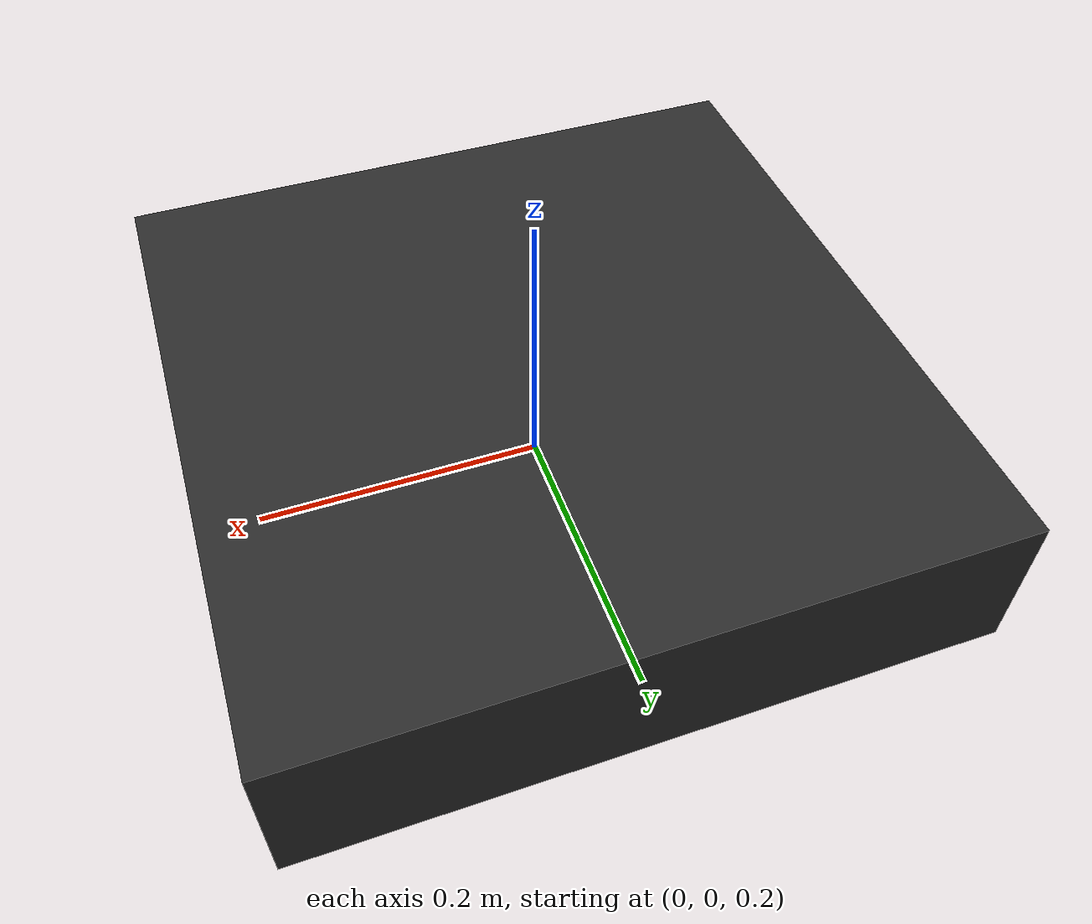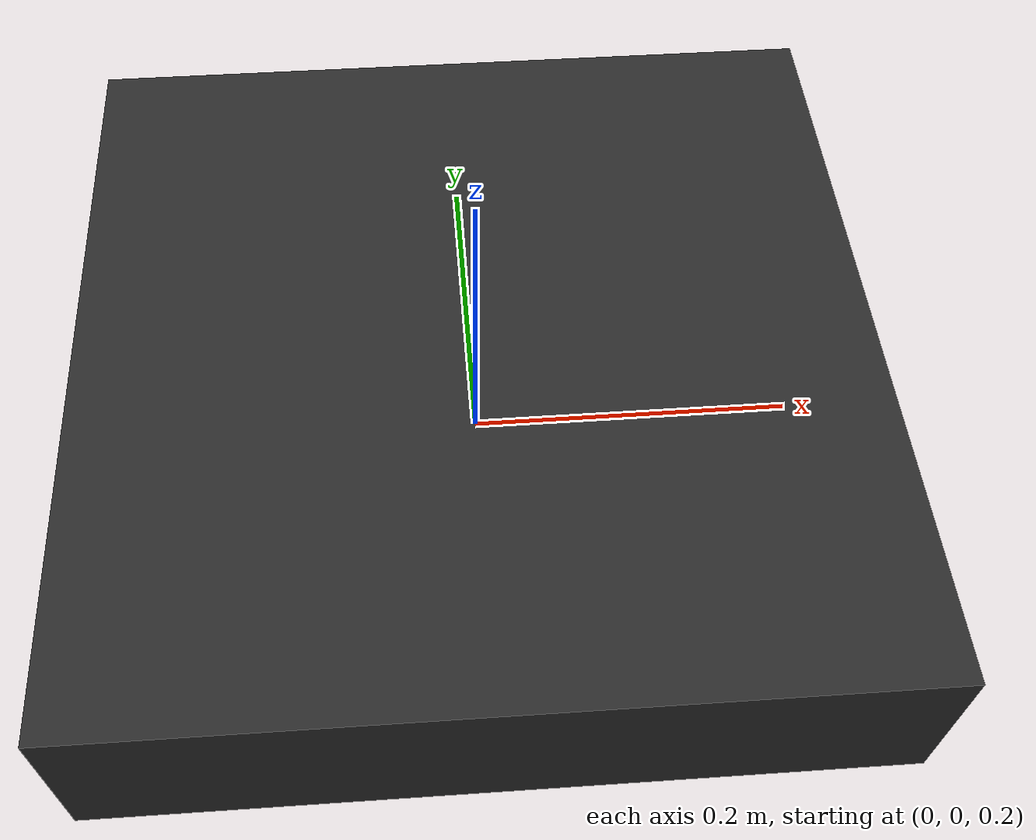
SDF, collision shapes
<?xml version="1.0" encoding="UTF-8"?>
<sdf version='1.9'>
  <model name='px4vision'>
    <gz:partition>px4</gz:partition>
    <pose>0 0 .24 0 0 0</pose>
    <self_collide>false</self_collide>
    <static>false</static>
    <link name='base_link'>
      <pose>0 0 0 0 0 0</pose>
      <inertial>
        <pose>0 0 0 0 0 0</pose>
        <mass>1.5</mass>
        <inertia>
          <ixx>0.029125</ixx>
          <ixy>0</ixy>
          <ixz>0</ixz>
          <iyy>0.029125</iyy>
          <iyz>0</iyz>
          <izz>0.055225</izz>
        </inertia>
      </inertial>
      <gravity>1</gravity>
      <velocity_decay />
      <collision name='base_link_inertia_collision'>
        <pose>0 0 0 0 0 0</pose>
        <geometry>
          <box>
            <size>0.47 0.47 0.11</size>
          </box>
        </geometry>
        <surface>
          <contact>
            <ode>
              <min_depth>0.001</min_depth>
              <max_vel>0</max_vel>
            </ode>
          </contact>
          <friction>
            <ode/>
          </friction>
        </surface>
      </collision>
      <visual name='base_link_inertia_visual'>
        <pose>0 0 0 1.5707 0 0.01</pose>
        <geometry>
          <mesh>
            <scale>0.001 0.001 0.001</scale>
            <uri>model://px4vision/meshes/body.dae</uri>
          </mesh>
        </geometry>
        <material> <!-- DarkGrey-->
          <ambient>0.175 0.175 0.175 1.0</ambient>
          <diffuse>0.175 0.175 0.175 1.0</diffuse>
          <specular>0.175 0.175 0.175 1.0</specular>
        </material>
      </visual>
      <sensor name="air_pressure_sensor" type="air_pressure">
        <frame_id>base_link</frame_id>
        <always_on>1</always_on>
        <update_rate>30</update_rate>
        <plugin filename="gz-sim-air-pressure-system" name="gz::sim::systems::AirPressure" />
        <air_pressure>
          <topic>baro</topic>
          <pressure>
            <noise type="gaussian">
              <mean>0</mean>
              <stddev>0.01</stddev>
            </noise>
          </pressure>
        </air_pressure>
      </sensor>
      <sensor name="magnetometer_sensor" type="magnetometer">
        <frame_id>base_link</frame_id>
        <always_on>1</always_on>
        <update_rate>100</update_rate>
        <plugin filename="gz-sim-magnetometer-system" name="gz::sim::systems::Magnetometer" />
        <magnetometer>
          <!-- TODO: update to fix units and coordinate system when we move past Harmonic -->
          <!-- See https://github.com/gazebosim/gz-sim/pull/2460 -->
          <!-- 3mgauss RMS: NOTE: noise is in tesla but sensor reports data in gauss -->
          <!-- Noise modeled after IIS2MDC -->
          <topic>mag</topic>
          <x>
            <noise type="gaussian">
              <stddev>0.0001</stddev>
            </noise>
          </x>
          <y>
            <noise type="gaussian">
              <stddev>0.0001</stddev>
            </noise>
          </y>
          <z>
            <noise type="gaussian">
              <stddev>0.0001</stddev>
            </noise>
          </z>
        </magnetometer>
      </sensor>
      <sensor name="navsat_sensor" type="navsat">
         <frame_id>base_link</frame_id>
        <always_on>1</always_on>
        <update_rate>10</update_rate>
        <plugin filename="gz-sim-navsat-system" name="gz::sim::systems::NavSat"/>  <!-- different versions for gz and ign -->
      </sensor>
      <sensor name="imu_sensor" type="imu">
        <frame_id>base_link</frame_id>
        <always_on>1</always_on>
        <update_rate>250</update_rate>
        <plugin filename="gz-sim-imu-system" name="gz::sim::systems::Imu"/>
        <imu>
          <topic>imu</topic>
          <angular_velocity>
            <x>
              <noise type="gaussian">
                <mean>0</mean>
                <stddev>0.00018665</stddev>
                <dynamic_bias_stddev>0.000038785</dynamic_bias_stddev>
                <dynamic_bias_correlation_time>1000</dynamic_bias_correlation_time>
              </noise>
            </x>
            <y>
              <noise type="gaussian">
                <mean>0</mean>
                <stddev>0.00018665</stddev>
                <dynamic_bias_stddev>0.000038785</dynamic_bias_stddev>
                <dynamic_bias_correlation_time>1000</dynamic_bias_correlation_time>
              </noise>
            </y>
            <z>
              <noise type="gaussian">
                <mean>0</mean>
                <stddev>0.00018665</stddev>
                <dynamic_bias_stddev>0.000038785</dynamic_bias_stddev>
                <dynamic_bias_correlation_time>1000</dynamic_bias_correlation_time>
              </noise>
            </z>
          </angular_velocity>
          <linear_acceleration>
            <x>
              <noise type="gaussian">
                <mean>0</mean>
                <stddev>0.00186</stddev>
                <dynamic_bias_stddev>0.006</dynamic_bias_stddev>
                <dynamic_bias_correlation_time>300</dynamic_bias_correlation_time>
              </noise>
            </x>
            <y>
              <noise type="gaussian">
                <mean>0</mean>
                <stddev>0.00186</stddev>
                <dynamic_bias_stddev>0.006</dynamic_bias_stddev>
                <dynamic_bias_correlation_time>300</dynamic_bias_correlation_time>
              </noise>
            </y>
            <z>
              <noise type="gaussian">
                <mean>0</mean>
                <stddev>0.00186</stddev>
                <dynamic_bias_stddev>0.006</dynamic_bias_stddev>
                <dynamic_bias_correlation_time>300</dynamic_bias_correlation_time>
              </noise>
            </z>
          </linear_acceleration>
        </imu>
      </sensor>
      <sensor name="gpu_lidar" type="gpu_lidar">
        <frame_id>base_link</frame_id>
        <pose> 0.07 0.032 -0.012 0 -0.4 0</pose>
        <always_on>1</always_on>
        <update_rate>30</update_rate>
        <ray>
          <topic>lidar</topic>
          <scan>
            <horizontal>
              <samples>640</samples>
              <resolution>1</resolution>
              <min_angle>-1.396263</min_angle>
              <max_angle>1.396263</max_angle>
            </horizontal>
            <vertical>
              <samples>640</samples>
              <resolution>1</resolution>
              <min_angle>-0.52</min_angle>
              <max_angle>0.26</max_angle>
            </vertical>
          </scan>
          <range>
            <min>0.08</min>
            <max>40.0</max>
            <resolution>0.01</resolution>
          </range>
        </ray>
        <!-- Optional visualization -->
        <visualize>true</visualize>
        <!-- Topic name -->
      </sensor>
      <sensor name="optical_flow" type="camera">
        <pose> 0.7 0.32 -4.0 0 1.5708 0 </pose>
        <always_on>1</always_on>
        <update_rate>30</update_rate>
        <camera>
          <horizontal_fov>1.3962634</horizontal_fov>
          <topic>flow</topic>
          <image>
            <width>64</width>
            <height>64</height>
            <format>L8</format>
          </image>
          <clip>
            <near>0.08</near>
            <far>50.0</far>
          </clip>
        </camera>
      </sensor>
    </link>
    <!-- Ground-truth pose publisher -->

    <plugin filename="gz-sim-pose-publisher-system" name="gz::sim::systems::PosePublisher">
      <publish_link_pose>false</publish_link_pose>
      <publish_model_pose>true</publish_model_pose>
      <update_rate>30</update_rate>
    </plugin>

    <!-- RGB Camera Link -->
    <link name="left_camera_link">
      <pose> 0.19 0.05 -0.012 0 0 0 </pose>  <!-- adjust as needed 0.09 -0.032 -0.012 0 0 0 -->
      <!-- Minimal inertial block -->
      <inertial>
        <mass>0.01</mass>
        <inertia>
          <ixx>1e-6</ixx>
          <iyy>1e-6</iyy>
          <izz>1e-6</izz>
        </inertia>
      </inertial>

      <!-- Simple collision so physics doesn't explode -->
      <collision name="left_camera_collision">
        <geometry>
          <box><size>0.05 0.05 0.05</size></box>
        </geometry>
      </collision>

      <sensor name="left_camera" type="camera">
        <frame_id>left_camera_optical</frame_id>
        <always_on>1</always_on>
        <update_rate>30</update_rate>
        <plugin filename="libgz-sim-camera-system.so" name="gz::sim::systems::Camera"/>

        <!-- left -->
        <camera name="left">
          <topic>left/image</topic>
          <horizontal_fov>1.5708</horizontal_fov>
          <image>
            <width>640</width>
            <height>480</height>
            <format>R8G8B8</format>
          </image>
          <lens>
            <intrinsics>
              <fx>320</fx>
              <fy>320</fy>
              <cx>320</cx>
              <cy>240</cy>
            </intrinsics>
          </lens>
          <clip>
            <near>0.02</near>
            <far>100.0</far>
          </clip>
        </camera>
      </sensor>

    </link>

    <joint name="left_camera_joint" type="fixed">
      <parent>base_link</parent>
      <child>left_camera_link</child>
    </joint>

    <link name="right_camera_link">
      <pose> 0.19 -0.05 -0.012 0 0 0 </pose>
      <inertial>
        <mass>0.01</mass>
        <inertia>
          <ixx>1e-6</ixx>
          <iyy>1e-6</iyy>
          <izz>1e-6</izz>
        </inertia>
      </inertial>

      <collision name="right_camera_collision">
        <geometry>
          <box><size>0.05 0.05 0.05</size></box>
        </geometry>
      </collision>

      <sensor name="right_camera" type="camera">
        <frame_id>right_camera_optical</frame_id>
        <always_on>1</always_on>
        <update_rate>30</update_rate>
        <plugin filename="libgz-sim-camera-system.so" name="gz::sim::systems::Camera"/>
        <camera>
          <topic>right/image</topic>
          <horizontal_fov>1.5708</horizontal_fov>
          <image>
            <width>640</width>
            <height>480</height>
            <format>R8G8B8</format>
          </image>
          <lens>
            <intrinsics>
              <fx>320</fx>
              <fy>320</fy>
              <cx>320</cx>
              <cy>240</cy>
            </intrinsics>
          </lens>
          <clip>
            <near>0.02</near>
            <far>100.0</far>
          </clip>
        </camera>
      </sensor>
    </link>

    <joint name="right_camera_joint" type="fixed">
      <parent>base_link</parent>
      <child>right_camera_link</child>
    </joint>

    <!-- Depth Camera Link -->
    <link name="depth_camera_link">
      <pose> 0.09 -0.032 -0.012 0 0 0 </pose>

      <!-- Minimal inertial block -->
      <inertial>
        <mass>0.01</mass>
        <inertia>
          <ixx>1e-6</ixx>
          <iyy>1e-6</iyy>
          <izz>1e-6</izz>
        </inertia>
      </inertial>

      <!-- Simple collision -->
      <collision name="depth_camera_collision">
        <geometry>
          <box><size>0.05 0.05 0.05</size></box>
        </geometry>
      </collision>

      <!-- Visual -->
      <visual name="depth_camera_visual">
        <geometry>
          <box><size>0.01 0.01 0.01</size></box>
        </geometry>
        <material>
          <ambient>0 1 0 1</ambient>
          <diffuse>0 1 0 1</diffuse>
        </material>
      </visual>

      <sensor name="depth_camera" type="depth_camera">
        <frame_id>depth_camera_optical</frame_id>
        <always_on>1</always_on>
        <update_rate>30</update_rate>

        <topic>depth</topic>

        <camera>
          <horizontal_fov>1.5708</horizontal_fov>

          <image>
            <width>640</width>
            <height>480</height>
            <format>R_FLOAT32</format>
          </image>

          <clip>
            <near>0.02</near>
            <far>100.0</far>
          </clip>

          <lens>
            <intrinsics>
              <fx>320</fx>
              <fy>320</fy>
              <cx>320</cx>
              <cy>240</cy>
            </intrinsics>
          </lens>
        </camera>

        <depth_camera>
          <output>depths</output>
        </depth_camera>

        <plugin filename="gz-sim-depth-camera-system" name="gz::sim::systems::DepthCamera"/>
      </sensor>
    </link>

    <!-- Joint connecting depth camera to base_link -->
    <joint name="depth_camera_joint" type="fixed">
      <parent>base_link</parent>
      <child>depth_camera_link</child>
    </joint>

    <link name='rotor_0'>
      <pose>0.0935 -0.107 0.03 0 0 0</pose>
      <inertial>
        <pose>0 0 0 0 0 0</pose>
        <mass>0.005</mass>
        <inertia>
          <ixx>9.75e-07</ixx>
          <iyy>0.000273104</iyy>
          <izz>0.000274004</izz>
        </inertia>
      </inertial>
      <collision name='rotor_0_collision'>
        <pose>0 0 0 0 0 0</pose>
        <geometry>
          <cylinder>
            <length>0.005</length>
            <radius>0.128</radius>
          </cylinder>
        </geometry>
        <surface>
          <contact>
            <ode>
              <min_depth>0.001</min_depth>
              <max_vel>0</max_vel>
            </ode>
          </contact>
          <friction>
            <ode />
          </friction>
        </surface>
      </collision>
      <visual name='rotor_0_visual'>
        <pose>0 0 0 0 0 0</pose>
        <geometry>
          <mesh>
            <scale>0.6 0.6 0.6</scale>
            <uri>model://px4vision/meshes/iris_prop_ccw.dae</uri>
          </mesh>
        </geometry>
        <material> <!-- Blue -->
          <ambient>0 0 1</ambient>
          <diffuse>0 0 1</diffuse>
          <specular>0.1 0.1 0.1 1</specular>
        </material>
      </visual>
      <gravity>1</gravity>
      <velocity_decay />
    </link>
    <joint name='rotor_0_joint' type='revolute'>
      <child>rotor_0</child>
      <parent>base_link</parent>
      <axis>
        <xyz>0 0 1</xyz>
        <limit>
          <lower>-1e+16</lower>
          <upper>1e+16</upper>
        </limit>
        <dynamics>
          <spring_reference>0</spring_reference>
          <spring_stiffness>0</spring_stiffness>
        </dynamics>
      </axis>
    </joint>
    <link name='rotor_1'>
      <pose>-0.0935 0.107 0.03 0 0 0</pose>
      <inertial>
        <pose>0 0 0 0 0 0</pose>
        <mass>0.005</mass>
        <inertia>
          <ixx>9.75e-07</ixx>
          <iyy>0.000273104</iyy>
          <izz>0.000274004</izz>
        </inertia>
      </inertial>
      <collision name='rotor_1_collision'>
        <pose>0 0 0 0 0 0</pose>
        <geometry>
          <cylinder>
            <length>0.005</length>
            <radius>0.128</radius>
          </cylinder>
        </geometry>
        <surface>
          <contact>
            <ode>
              <min_depth>0.001</min_depth>
              <max_vel>0</max_vel>
            </ode>
          </contact>
          <friction>
            <ode />
          </friction>
        </surface>
      </collision>
      <visual name='rotor_1_visual'>
        <pose>0 0 0 0 0 0</pose>
        <geometry>
          <mesh>
            <scale>0.6 0.6 0.6</scale>
            <uri>model://px4vision/meshes/iris_prop_ccw.dae</uri>
          </mesh>
        </geometry>
        <material> <!-- DarkGrey -->
          <ambient>0.175 0.175 0.175 1.0</ambient>
          <diffuse>0.175 0.175 0.175 1.0</diffuse>
          <specular>0.175 0.175 0.175 1.0</specular>
        </material>
      </visual>
      <gravity>1</gravity>
      <velocity_decay />
    </link>
    <joint name='rotor_1_joint' type='revolute'>
      <child>rotor_1</child>
      <parent>base_link</parent>
      <axis>
        <xyz>0 0 1</xyz>
        <limit>
          <lower>-1e+16</lower>
          <upper>1e+16</upper>
        </limit>
        <dynamics>
          <spring_reference>0</spring_reference>
          <spring_stiffness>0</spring_stiffness>
        </dynamics>
      </axis>
    </joint>
    <link name='rotor_2'>
      <pose>0.0935 0.107 0.03 0 0 0</pose>
      <inertial>
        <pose>0 0 0 0 0 0</pose>
        <mass>0.005</mass>
        <inertia>
          <ixx>9.75e-07</ixx>
          <iyy>0.000273104</iyy>
          <izz>0.000274004</izz>
        </inertia>
      </inertial>
      <collision name='rotor_2_collision'>
        <pose>0 0 0 0 0 0</pose>
        <geometry>
          <cylinder>
            <length>0.005</length>
            <radius>0.128</radius>
          </cylinder>
        </geometry>
        <surface>
          <contact>
            <ode>
              <min_depth>0.001</min_depth>
              <max_vel>0</max_vel>
            </ode>
          </contact>
          <friction>
            <ode />
          </friction>
        </surface>
      </collision>
      <visual name='rotor_2_visual'>
        <pose>0 0 0 0 0 0</pose>
        <geometry>
          <mesh>
            <scale>0.6 0.6 0.6</scale>
            <uri>model://px4vision/meshes/iris_prop_cw.dae</uri>
          </mesh>
        </geometry>
        <material> <!-- Blue -->
          <ambient>0 0 1</ambient>
          <diffuse>0 0 1</diffuse>
          <specular>0.1 0.1 0.1 1</specular>
        </material>
      </visual>
      <gravity>1</gravity>
      <velocity_decay />
    </link>
    <joint name='rotor_2_joint' type='revolute'>
      <child>rotor_2</child>
      <parent>base_link</parent>
      <axis>
        <xyz>0 0 1</xyz>
        <limit>
          <lower>-1e+16</lower>
          <upper>1e+16</upper>
        </limit>
        <dynamics>
          <spring_reference>0</spring_reference>
          <spring_stiffness>0</spring_stiffness>
        </dynamics>
      </axis>
    </joint>
    <link name='rotor_3'>
      <pose>-0.0935 -0.107 0.03 0 0 0</pose>
      <inertial>
        <pose>0 0 0 0 0 0</pose>
        <mass>0.005</mass>
        <inertia>
          <ixx>9.75e-07</ixx>
          <iyy>0.000273104</iyy>
          <izz>0.000274004</izz>
        </inertia>
      </inertial>
      <collision name='rotor_3_collision'>
        <pose>0 0 0 0 0 0</pose>
        <geometry>
          <cylinder>
            <length>0.005</length>
            <radius>0.128</radius>
          </cylinder>
        </geometry>
        <surface>
          <contact>
            <ode>
              <min_depth>0.001</min_depth>
              <max_vel>0</max_vel>
            </ode>
          </contact>
          <friction>
            <ode />
          </friction>
        </surface>
      </collision>
      <visual name='rotor_3_visual'>
        <pose>0 0 0 0 0 0</pose>
        <geometry>
          <mesh>
            <scale>0.6 0.6 0.6</scale>
            <uri>model://px4vision/meshes/iris_prop_cw.dae</uri>
          </mesh>
        </geometry>
        <material> <!-- DarkGrey -->
          <ambient>0.175 0.175 0.175 1.0</ambient>
          <diffuse>0.175 0.175 0.175 1.0</diffuse>
          <specular>0.175 0.175 0.175 1.0</specular>
        </material>
      </visual>
      <gravity>1</gravity>
      <velocity_decay />
    </link>
    <joint name='rotor_3_joint' type='revolute'>
      <child>rotor_3</child>
      <parent>base_link</parent>
      <axis>
        <xyz>0 0 1</xyz>
        <limit>
          <lower>-1e+16</lower>
          <upper>1e+16</upper>
        </limit>
        <dynamics>
          <spring_reference>0</spring_reference>
          <spring_stiffness>0</spring_stiffness>
        </dynamics>
      </axis>
    </joint>
    <!-- TODO: add GPS plugin -->
    <plugin filename="gz-sim-multicopter-motor-model-system"
      name="gz::sim::systems::MulticopterMotorModel">
      <robotNamespace>px4vision</robotNamespace>
      <jointName>rotor_0_joint</jointName>
      <linkName>rotor_0</linkName>
      <turningDirection>ccw</turningDirection>
      <timeConstantUp>0.0125</timeConstantUp>
      <timeConstantDown>0.025</timeConstantDown>
      <maxRotVelocity>1000</maxRotVelocity>
      <motorConstant>8.54858e-06</motorConstant>
      <momentConstant>0.06</momentConstant>
      <commandSubTopic>command/motor_speed</commandSubTopic>
      <motorNumber>0</motorNumber>
      <rotorDragCoefficient>0.000806428</rotorDragCoefficient>
      <rollingMomentCoefficient>1e-06</rollingMomentCoefficient>
      <rotorVelocitySlowdownSim>10</rotorVelocitySlowdownSim>
      <motorType>velocity</motorType>
    </plugin>
    <plugin filename="gz-sim-multicopter-motor-model-system"
      name="gz::sim::systems::MulticopterMotorModel">
      <robotNamespace>px4vision</robotNamespace>
      <jointName>rotor_1_joint</jointName>
      <linkName>rotor_1</linkName>
      <turningDirection>ccw</turningDirection>
      <timeConstantUp>0.0125</timeConstantUp>
      <timeConstantDown>0.025</timeConstantDown>
      <maxRotVelocity>1000</maxRotVelocity>
      <motorConstant>8.54858e-06</motorConstant>
      <momentConstant>0.06</momentConstant>
      <commandSubTopic>command/motor_speed</commandSubTopic>
      <motorNumber>1</motorNumber>
      <rotorDragCoefficient>0.000806428</rotorDragCoefficient>
      <rollingMomentCoefficient>1e-06</rollingMomentCoefficient>
      <rotorVelocitySlowdownSim>10</rotorVelocitySlowdownSim>
      <motorType>velocity</motorType>
    </plugin>
    <plugin filename="gz-sim-multicopter-motor-model-system"
      name="gz::sim::systems::MulticopterMotorModel">
      <robotNamespace>px4vision</robotNamespace>
      <jointName>rotor_2_joint</jointName>
      <linkName>rotor_2</linkName>
      <turningDirection>cw</turningDirection>
      <timeConstantUp>0.0125</timeConstantUp>
      <timeConstantDown>0.025</timeConstantDown>
      <maxRotVelocity>1000</maxRotVelocity>
      <motorConstant>8.54858e-06</motorConstant>
      <momentConstant>0.06</momentConstant>
      <commandSubTopic>command/motor_speed</commandSubTopic>
      <motorNumber>2</motorNumber>
      <rotorDragCoefficient>0.000806428</rotorDragCoefficient>
      <rollingMomentCoefficient>1e-06</rollingMomentCoefficient>
      <rotorVelocitySlowdownSim>10</rotorVelocitySlowdownSim>
      <motorType>velocity</motorType>
    </plugin>
    <plugin filename="gz-sim-multicopter-motor-model-system"
      name="gz::sim::systems::MulticopterMotorModel">
      <robotNamespace>px4vision</robotNamespace>
      <jointName>rotor_3_joint</jointName>
      <linkName>rotor_3</linkName>
      <turningDirection>cw</turningDirection>
      <timeConstantUp>0.0125</timeConstantUp>
      <timeConstantDown>0.025</timeConstantDown>
      <maxRotVelocity>1000</maxRotVelocity>
      <motorConstant>8.54858e-06</motorConstant>
      <momentConstant>0.06</momentConstant>
      <commandSubTopic>command/motor_speed</commandSubTopic>
      <motorNumber>3</motorNumber>
      <rotorDragCoefficient>0.000806428</rotorDragCoefficient>
      <rollingMomentCoefficient>1e-06</rollingMomentCoefficient>
      <rotorVelocitySlowdownSim>10</rotorVelocitySlowdownSim>
      <motorType>velocity</motorType>
    </plugin>
    <plugin
      filename="gz-sim-sensors-system" name="gz::sim::systems::Sensors">
      <render_engine>ogre2</render_engine>
    </plugin>
  </model>
</sdf>
